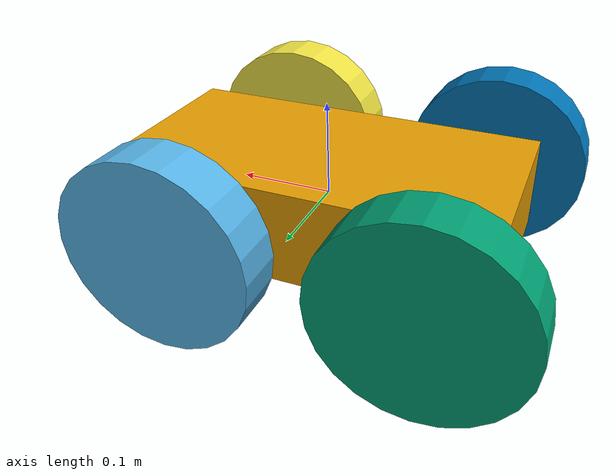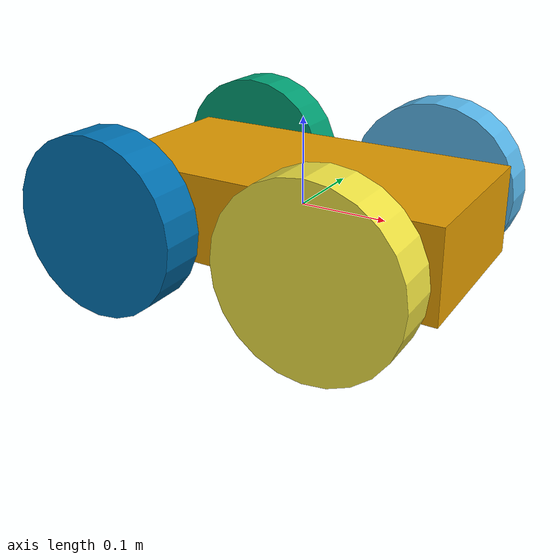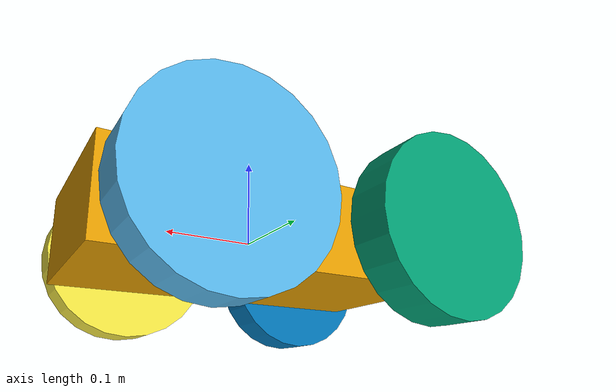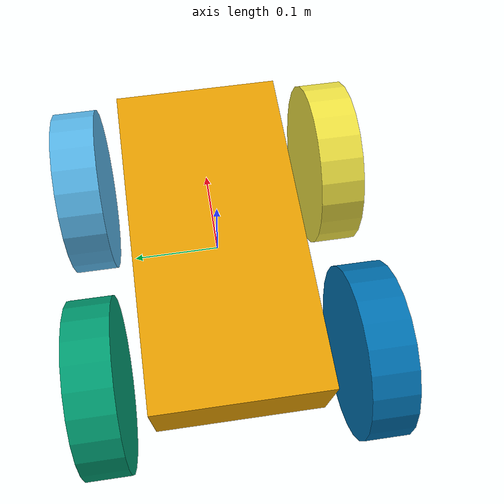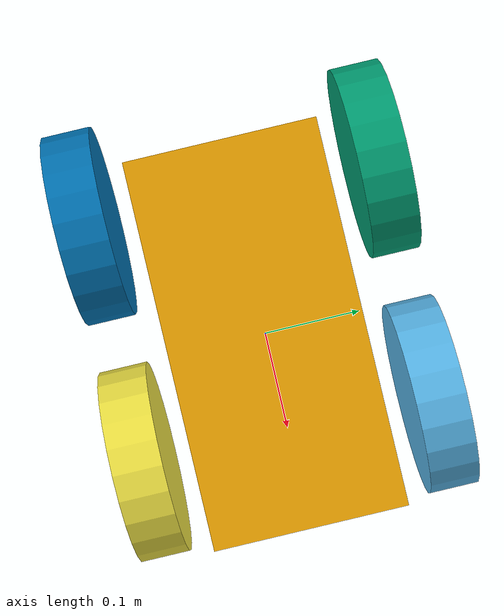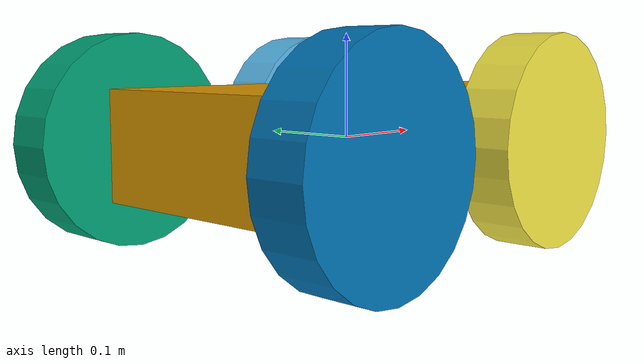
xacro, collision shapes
<?xml version='1.0'?>

<robot name="myrobot" xmlns:xacro="http://www.ros.org/wiki/xacro">

  <xacro:arg name="id" default="1" />
  <xacro:include filename="$(find mybot_description)/urdf/mybot.gazebo"/>
  <idbridge id="$(arg id)"/>

  <xacro:include filename="$(find mybot_description)/urdf/materials.xacro" />
  <xacro:include filename="$(find mybot_description)/urdf/macros.xacro" />

  <link name='chassis$(arg id)'>
    <pose>0 0 0.1 0 0 0</pose>

    <inertial>
      <mass value="10.0"/>
      <origin xyz="0.0 0 0.1" rpy=" 0 0 0"/>
      <inertia
          ixx="0.5" ixy="0" ixz="0"
          iyy="1.0" iyz="0"
          izz="0.1"
      />
    </inertial>

    <collision name='collision$(arg id)'>
      <geometry>
        <box size=".4 .2 .1"/>
      </geometry>
    </collision>

    <visual name='chassis_visual$(arg id)'>
      <origin xyz="0 0 0" rpy=" 0 0 0"/>
      <geometry>
        <mesh filename="$(find mybot_description)/urdf/chassis.dae" scale="0.9 0.8 0.5"/>

      </geometry>
    </visual>

  </link>

  <link name="left_wheel$(arg id)">
    <!--origin xyz="0.1 0.13 0.1" rpy="0 1.5707 1.5707"/-->
    <collision name="collision$(arg id)">
      <origin xyz="0 0 0" rpy="0 1.5707 1.5707"/>
      <geometry>
        <cylinder radius="0.1" length="0.05"/>
      </geometry>
    <surface>
        <friction>
          <ode>
            <mu>0.01</mu>
            <mu2>0.01</mu2>
          </ode>
        </friction>
      </surface>
    </collision>
    <visual name="left_wheel_visual$(arg id)">
      <origin xyz="0 0 0" rpy="0 1.0 0"/>
      <geometry>
        <mesh filename="$(find mybot_description)/urdf/wheel.dae"/>
      </geometry>
    </visual>
    <inertial>
      <origin xyz="0 0 0" rpy="0 1.5707 1.5707"/>
      <mass value="5"/>
      <cylinder_inertia m="5" r="0.1" h="0.05"/>
      <inertia
        ixx="1.0" ixy="0.0" ixz="0.0"
        iyy="1.0" iyz="0.0"
        izz="1.0"/>
    </inertial>
  </link>
<link name="left_wheel_back$(arg id)">
    <!--origin xyz="0.1 0.13 0.1" rpy="0 1.5707 1.5707"/-->
    <collision name="collision$(arg id)">
      <origin xyz="0 0 0" rpy="0 1.5707 1.5707"/>
      <geometry>
        <cylinder radius="0.1" length="0.05"/>
      </geometry>
    <surface>
        <friction>
          <ode>
            <mu>0.01</mu>
            <mu2>0.01</mu2>
          </ode>
        </friction>
      </surface>
    </collision>
    <visual name="left_wheel_visual$(arg id)">
      <origin xyz="0 0 0" rpy="0 1.0 0"/>
      <geometry>
        <mesh filename="$(find mybot_description)/urdf/wheel.dae"/>
      </geometry>
    </visual>
    <inertial>
      <origin xyz="0 0 0" rpy="0 1.5707 1.5707"/>
      <mass value="5"/>
      <cylinder_inertia m="5" r="0.1" h="0.05"/>
      <inertia
        ixx="1.0" ixy="0.0" ixz="0.0"
        iyy="1.0" iyz="0.0"
        izz="1.0"/>
    </inertial>
  </link>
  <link name="right_wheel$(arg id)">
    <!--origin xyz="0.1 -0.13 0.1" rpy="0 1.5707 1.5707"/-->
    <collision name="collision$(arg id)">
      <origin xyz="0 0 0" rpy="0 1.5707 1.5707"/>
      <geometry>
        <cylinder radius="0.1" length="0.05"/>
      </geometry>
    <surface>
        <friction>
          <ode>
            <mu>0.01</mu>
            <mu2></mu2>
          </ode>
        </friction>
      </surface>
    </collision>
    <visual name="right_wheel_visual$(arg id)">
      <origin xyz="0 0 0" rpy="0 0 0"/>
      <geometry>
        <mesh filename="$(find mybot_description)/urdf/wheel.dae"/>
      </geometry>
    </visual>
    <inertial>
      <origin xyz="0 0 0" rpy="0 1.5707 1.5707"/>
      <mass value="5"/>
      <cylinder_inertia m="5" r="0.1" h="0.05"/>
      <inertia
        ixx="1.0" ixy="0.0" ixz="0.0"
        iyy="1.0" iyz="0.0"
        izz="1.0"/>
    </inertial>
  </link>
<link name="right_wheel_back$(arg id)">
    <!--origin xyz="0.1 -0.13 0.1" rpy="0 1.5707 1.5707"/-->
    <collision name="collision$(arg id)">
      <origin xyz="0 0 0" rpy="0 1.5707 1.5707"/>
      <geometry>
        <cylinder radius="0.1" length="0.05"/>
      </geometry>
    <surface>
        <friction>
          <ode>
            <mu>0.01</mu>
            <mu2></mu2>
          </ode>
        </friction>
      </surface>
    </collision>
    <visual name="right_wheel_visual$(arg id)">
      <origin xyz="0 0 0" rpy="0 0 0"/>
      <geometry>
        <mesh filename="$(find mybot_description)/urdf/wheel.dae"/>
      </geometry>
    </visual>
    <inertial>
      <origin xyz="0 0 0" rpy="0 1.5707 1.5707"/>
      <mass value="5"/>
      <cylinder_inertia m="5" r="0.1" h="0.05"/>
      <inertia
        ixx="1.0" ixy="0.0" ixz="0.0"
        iyy="1.0" iyz="0.0"
        izz="1.0"/>
    </inertial>
  </link>

  <joint type="continuous" name="left_wheel_hinge$(arg id)">
    <origin xyz="0.1 0.151 0" rpy="0 0 0"/>
    <child link="left_wheel$(arg id)"/>
    <parent link="chassis$(arg id)"/>
    <axis xyz="0 1 0" rpy="0 0 0"/>
    <limit effort="100" velocity="100"/>
    <joint_properties damping="0.0" friction="0.0"/>
  </joint>

  <joint type="continuous" name="right_wheel_hinge$(arg id)">
    <origin xyz="0.1 -0.151 0" rpy="0 0 0"/>
    <child link="right_wheel$(arg id)"/>
    <parent link="chassis$(arg id)"/>
    <axis xyz="0 1 0" rpy="0 0 0"/>
    <limit effort="100" velocity="100"/>
    <joint_properties damping="0.0" friction="0.0"/>
  </joint>
  <joint type="continuous" name="left_wheel_hinge_b$(arg id)">
    <origin xyz="-0.15 0.151 0" rpy="0 0 0"/>
    <child link="left_wheel_back$(arg id)"/>
    <parent link="chassis$(arg id)"/>
    <axis xyz="0 1 0" rpy="0 0 0"/>
    <limit effort="100" velocity="100"/>
    <joint_properties damping="0.0" friction="0.0"/>
  </joint>
  <joint type="continuous" name="right_wheel_hinge_b$(arg id)">
    <origin xyz="-0.15 -0.151 0" rpy="0 0 0"/>
    <child link="right_wheel_back$(arg id)"/>
    <parent link="chassis$(arg id)"/>
    <axis xyz="0 1 0" rpy="0 0 0"/>
    <limit effort="100" velocity="100"/>
    <joint_properties damping="0.0" friction="0.0"/>
  </joint>

</robot>
